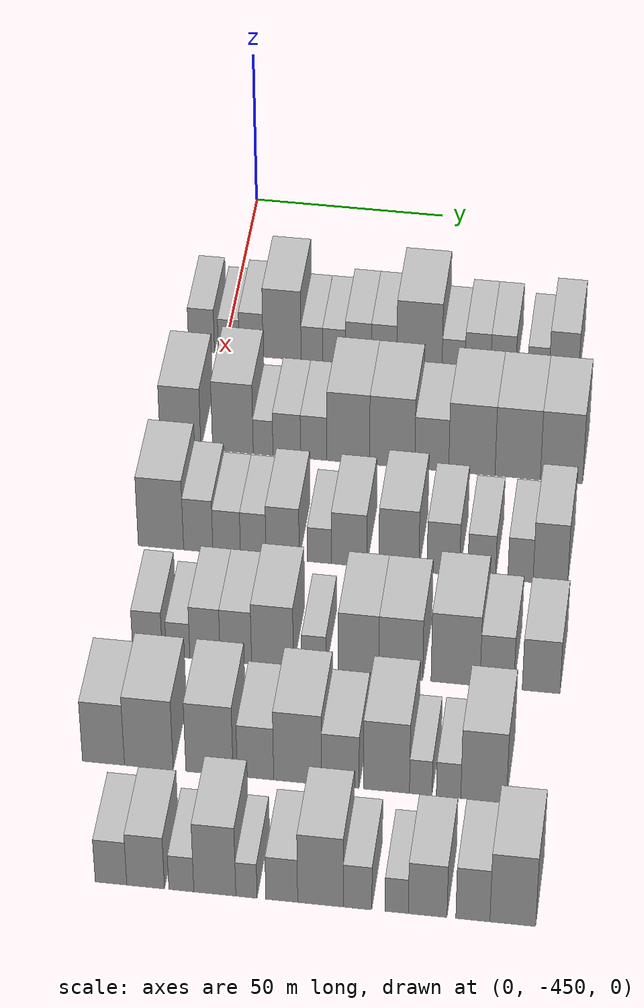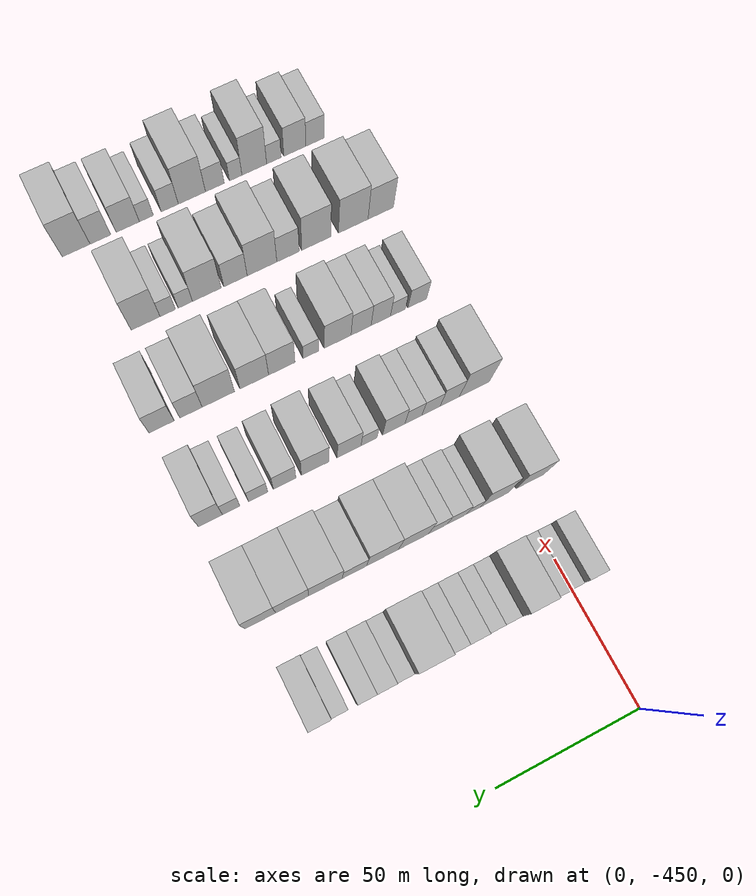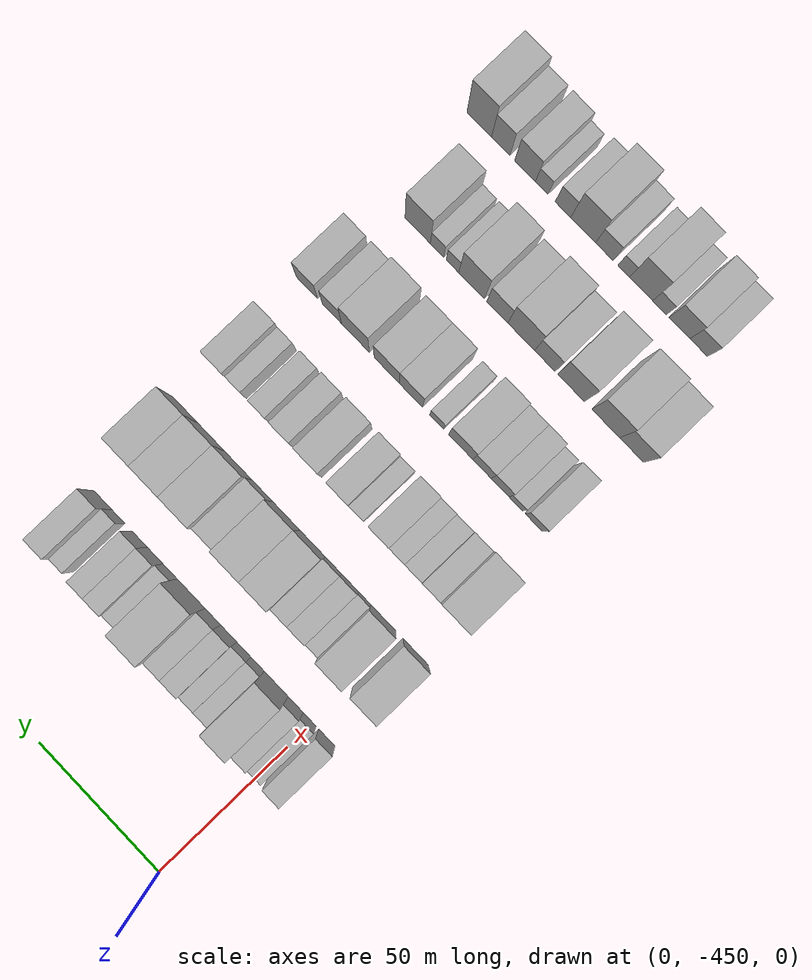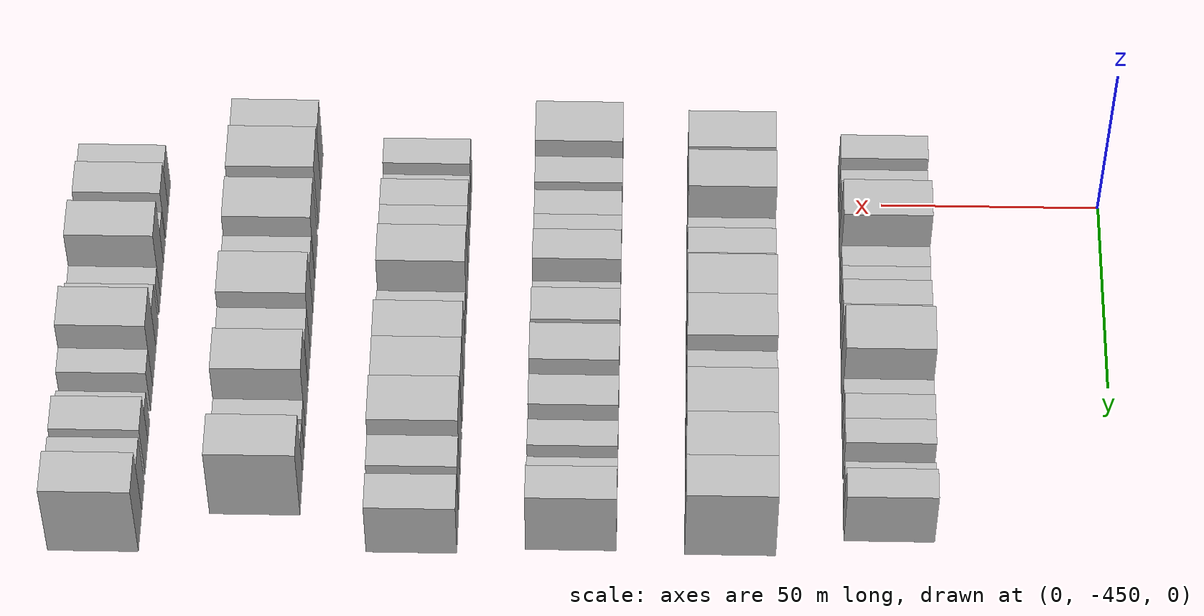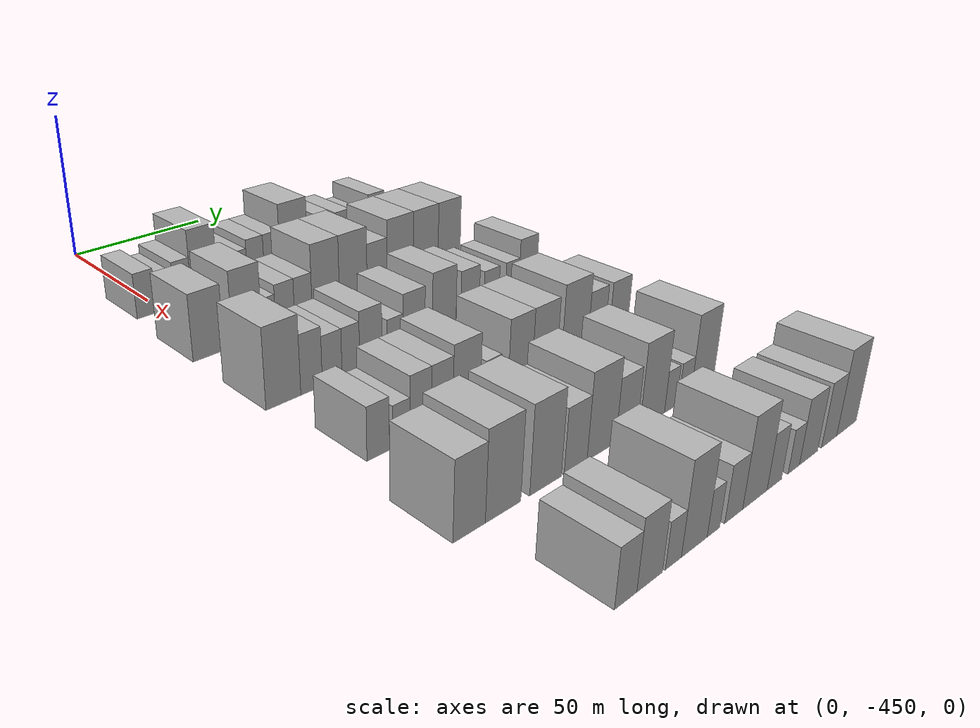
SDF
<sdf version="1.6">
 <world name="default">
  <model name="building_9">
   <static>1</static>
   <pose>50.0000 -455.7226 0 0.000000 0.000000 0.000000</pose>
   <link name="link">
    <pose>0 0 7.50 0 0 0</pose>
    <collision name="collision"><geometry><box><size>20.0000 6.7065 15.0000</size></box></geometry></collision>
    <visual name="visual">
     <cast_shadows>0</cast_shadows>
     <geometry><box><size>20.0000 6.7065 15.0000</size></box></geometry>
     <material>
      <script>
       <uri>model://HANNAS_wall/materials/scripts</uri>
       <uri>model://HANNAS_wall/materials/textures</uri>
       <name>vrc/HANNAS_wall</name>
      </script>
     </material>
    </visual>
   </link>
  </model>
  <model name="building_10">
   <static>1</static>
   <pose>50.0000 -448.6461 0 0.000000 0.000000 0.000000</pose>
   <link name="link">
    <pose>0 0 6.00 0 0 0</pose>
    <collision name="collision"><geometry><box><size>20.0000 5.4464 12.0000</size></box></geometry></collision>
    <visual name="visual">
     <cast_shadows>0</cast_shadows>
     <geometry><box><size>20.0000 5.4464 12.0000</size></box></geometry>
     <material>
      <script>
       <uri>model://HANNAS_wall/materials/scripts</uri>
       <uri>model://HANNAS_wall/materials/textures</uri>
       <name>vrc/HANNAS_wall</name>
      </script>
     </material>
    </visual>
   </link>
  </model>
  <model name="building_11">
   <static>1</static>
   <pose>50.0000 -442.8181 0 0.000000 0.000000 0.000000</pose>
   <link name="link">
    <pose>0 0 7.50 0 0 0</pose>
    <collision name="collision"><geometry><box><size>20.0000 6.2098 15.0000</size></box></geometry></collision>
    <visual name="visual">
     <cast_shadows>0</cast_shadows>
     <geometry><box><size>20.0000 6.2098 15.0000</size></box></geometry>
     <material>
      <script>
       <uri>model://HANNAS_wall/materials/scripts</uri>
       <uri>model://HANNAS_wall/materials/textures</uri>
       <name>vrc/HANNAS_wall</name>
      </script>
     </material>
    </visual>
   </link>
  </model>
  <model name="building_12">
   <static>1</static>
   <pose>50.0000 -434.7869 0 0.000000 0.000000 0.000000</pose>
   <link name="link">
    <pose>0 0 12.00 0 0 0</pose>
    <collision name="collision"><geometry><box><size>20.0000 9.8526 24.0000</size></box></geometry></collision>
    <visual name="visual">
     <cast_shadows>0</cast_shadows>
     <geometry><box><size>20.0000 9.8526 24.0000</size></box></geometry>
     <material>
      <script>
       <uri>model://HANNAS_wall/materials/scripts</uri>
       <uri>model://HANNAS_wall/materials/textures</uri>
       <name>vrc/HANNAS_wall</name>
      </script>
     </material>
    </visual>
   </link>
  </model>
  <model name="building_13">
   <static>1</static>
   <pose>50.0000 -427.0802 0 0.000000 0.000000 0.000000</pose>
   <link name="link">
    <pose>0 0 6.00 0 0 0</pose>
    <collision name="collision"><geometry><box><size>20.0000 5.5608 12.0000</size></box></geometry></collision>
    <visual name="visual">
     <cast_shadows>0</cast_shadows>
     <geometry><box><size>20.0000 5.5608 12.0000</size></box></geometry>
     <material>
      <script>
       <uri>model://HANNAS_wall/materials/scripts</uri>
       <uri>model://HANNAS_wall/materials/textures</uri>
       <name>vrc/HANNAS_wall</name>
      </script>
     </material>
    </visual>
   </link>
  </model>
  <model name="building_14">
   <static>1</static>
   <pose>50.0000 -421.3700 0 0.000000 0.000000 0.000000</pose>
   <link name="link">
    <pose>0 0 6.00 0 0 0</pose>
    <collision name="collision"><geometry><box><size>20.0000 5.8594 12.0000</size></box></geometry></collision>
    <visual name="visual">
     <cast_shadows>0</cast_shadows>
     <geometry><box><size>20.0000 5.8594 12.0000</size></box></geometry>
     <material>
      <script>
       <uri>model://HANNAS_wall/materials/scripts</uri>
       <uri>model://HANNAS_wall/materials/textures</uri>
       <name>vrc/HANNAS_wall</name>
      </script>
     </material>
    </visual>
   </link>
  </model>
  <model name="building_15">
   <static>1</static>
   <pose>50.0000 -415.0741 0 0.000000 0.000000 0.000000</pose>
   <link name="link">
    <pose>0 0 7.50 0 0 0</pose>
    <collision name="collision"><geometry><box><size>20.0000 6.7324 15.0000</size></box></geometry></collision>
    <visual name="visual">
     <cast_shadows>0</cast_shadows>
     <geometry><box><size>20.0000 6.7324 15.0000</size></box></geometry>
     <material>
      <script>
       <uri>model://HANNAS_wall/materials/scripts</uri>
       <uri>model://HANNAS_wall/materials/textures</uri>
       <name>vrc/HANNAS_wall</name>
      </script>
     </material>
    </visual>
   </link>
  </model>
  <model name="building_16">
   <static>1</static>
   <pose>50.0000 -408.4143 0 0.000000 0.000000 0.000000</pose>
   <link name="link">
    <pose>0 0 7.50 0 0 0</pose>
    <collision name="collision"><geometry><box><size>20.0000 6.5873 15.0000</size></box></geometry></collision>
    <visual name="visual">
     <cast_shadows>0</cast_shadows>
     <geometry><box><size>20.0000 6.5873 15.0000</size></box></geometry>
     <material>
      <script>
       <uri>model://HANNAS_wall/materials/scripts</uri>
       <uri>model://HANNAS_wall/materials/textures</uri>
       <name>vrc/HANNAS_wall</name>
      </script>
     </material>
    </visual>
   </link>
  </model>
  <model name="building_17">
   <static>1</static>
   <pose>50.0000 -399.2987 0 0.000000 0.000000 0.000000</pose>
   <link name="link">
    <pose>0 0 12.00 0 0 0</pose>
    <collision name="collision"><geometry><box><size>20.0000 11.6438 24.0000</size></box></geometry></collision>
    <visual name="visual">
     <cast_shadows>0</cast_shadows>
     <geometry><box><size>20.0000 11.6438 24.0000</size></box></geometry>
     <material>
      <script>
       <uri>model://HANNAS_wall/materials/scripts</uri>
       <uri>model://HANNAS_wall/materials/textures</uri>
       <name>vrc/HANNAS_wall</name>
      </script>
     </material>
    </visual>
   </link>
  </model>
  <model name="building_18">
   <static>1</static>
   <pose>50.0000 -390.5095 0 0.000000 0.000000 0.000000</pose>
   <link name="link">
    <pose>0 0 6.00 0 0 0</pose>
    <collision name="collision"><geometry><box><size>20.0000 5.9346 12.0000</size></box></geometry></collision>
    <visual name="visual">
     <cast_shadows>0</cast_shadows>
     <geometry><box><size>20.0000 5.9346 12.0000</size></box></geometry>
     <material>
      <script>
       <uri>model://HANNAS_wall/materials/scripts</uri>
       <uri>model://HANNAS_wall/materials/textures</uri>
       <name>vrc/HANNAS_wall</name>
      </script>
     </material>
    </visual>
   </link>
  </model>
  <model name="building_19">
   <static>1</static>
   <pose>50.0000 -384.2496 0 0.000000 0.000000 0.000000</pose>
   <link name="link">
    <pose>0 0 7.50 0 0 0</pose>
    <collision name="collision"><geometry><box><size>20.0000 6.5854 15.0000</size></box></geometry></collision>
    <visual name="visual">
     <cast_shadows>0</cast_shadows>
     <geometry><box><size>20.0000 6.5854 15.0000</size></box></geometry>
     <material>
      <script>
       <uri>model://HANNAS_wall/materials/scripts</uri>
       <uri>model://HANNAS_wall/materials/textures</uri>
       <name>vrc/HANNAS_wall</name>
      </script>
     </material>
    </visual>
   </link>
  </model>
  <model name="building_20">
   <static>1</static>
   <pose>50.0000 -377.7349 0 0.000000 0.000000 0.000000</pose>
   <link name="link">
    <pose>0 0 7.50 0 0 0</pose>
    <collision name="collision"><geometry><box><size>20.0000 6.4440 15.0000</size></box></geometry></collision>
    <visual name="visual">
     <cast_shadows>0</cast_shadows>
     <geometry><box><size>20.0000 6.4440 15.0000</size></box></geometry>
     <material>
      <script>
       <uri>model://HANNAS_wall/materials/scripts</uri>
       <uri>model://HANNAS_wall/materials/textures</uri>
       <name>vrc/HANNAS_wall</name>
      </script>
     </material>
    </visual>
   </link>
  </model>
  <model name="building_21">
   <static>1</static>
   <pose>50.0000 -368.7472 0 0.000000 0.000000 0.000000</pose>
   <link name="link">
    <pose>0 0 6.00 0 0 0</pose>
    <collision name="collision"><geometry><box><size>20.0000 5.5313 12.0000</size></box></geometry></collision>
    <visual name="visual">
     <cast_shadows>0</cast_shadows>
     <geometry><box><size>20.0000 5.5313 12.0000</size></box></geometry>
     <material>
      <script>
       <uri>model://HANNAS_wall/materials/scripts</uri>
       <uri>model://HANNAS_wall/materials/textures</uri>
       <name>vrc/HANNAS_wall</name>
      </script>
     </material>
    </visual>
   </link>
  </model>
  <model name="building_22">
   <static>1</static>
   <pose>50.0000 -362.2140 0 0.000000 0.000000 0.000000</pose>
   <link name="link">
    <pose>0 0 9.00 0 0 0</pose>
    <collision name="collision"><geometry><box><size>20.0000 7.5350 18.0000</size></box></geometry></collision>
    <visual name="visual">
     <cast_shadows>0</cast_shadows>
     <geometry><box><size>20.0000 7.5350 18.0000</size></box></geometry>
     <material>
      <script>
       <uri>model://HANNAS_wall/materials/scripts</uri>
       <uri>model://HANNAS_wall/materials/textures</uri>
       <name>vrc/HANNAS_wall</name>
      </script>
     </material>
    </visual>
   </link>
  </model>
  <model name="building_131">
   <static>1</static>
   <pose>85.0000 -455.6836 0 0.000000 0.000000 0.000000</pose>
   <link name="link">
    <pose>0 0 10.50 0 0 0</pose>
    <collision name="collision"><geometry><box><size>20.0000 10.3124 21.0000</size></box></geometry></collision>
    <visual name="visual">
     <cast_shadows>0</cast_shadows>
     <geometry><box><size>20.0000 10.3124 21.0000</size></box></geometry>
     <material>
      <script>
       <uri>model://HANNAS_wall/materials/scripts</uri>
       <uri>model://HANNAS_wall/materials/textures</uri>
       <name>vrc/HANNAS_wall</name>
      </script>
     </material>
    </visual>
   </link>
  </model>
  <model name="building_132">
   <static>1</static>
   <pose>85.0000 -442.3700 0 0.000000 0.000000 0.000000</pose>
   <link name="link">
    <pose>0 0 12.00 0 0 0</pose>
    <collision name="collision"><geometry><box><size>20.0000 10.3149 24.0000</size></box></geometry></collision>
    <visual name="visual">
     <cast_shadows>0</cast_shadows>
     <geometry><box><size>20.0000 10.3149 24.0000</size></box></geometry>
     <material>
      <script>
       <uri>model://HANNAS_wall/materials/scripts</uri>
       <uri>model://HANNAS_wall/materials/textures</uri>
       <name>vrc/HANNAS_wall</name>
      </script>
     </material>
    </visual>
   </link>
  </model>
  <model name="building_133">
   <static>1</static>
   <pose>85.0000 -434.7196 0 0.000000 0.000000 0.000000</pose>
   <link name="link">
    <pose>0 0 6.00 0 0 0</pose>
    <collision name="collision"><geometry><box><size>20.0000 4.9859 12.0000</size></box></geometry></collision>
    <visual name="visual">
     <cast_shadows>0</cast_shadows>
     <geometry><box><size>20.0000 4.9859 12.0000</size></box></geometry>
     <material>
      <script>
       <uri>model://HANNAS_wall/materials/scripts</uri>
       <uri>model://HANNAS_wall/materials/textures</uri>
       <name>vrc/HANNAS_wall</name>
      </script>
     </material>
    </visual>
   </link>
  </model>
  <model name="building_134">
   <static>1</static>
   <pose>85.0000 -428.7311 0 0.000000 0.000000 0.000000</pose>
   <link name="link">
    <pose>0 0 7.50 0 0 0</pose>
    <collision name="collision"><geometry><box><size>20.0000 6.9911 15.0000</size></box></geometry></collision>
    <visual name="visual">
     <cast_shadows>0</cast_shadows>
     <geometry><box><size>20.0000 6.9911 15.0000</size></box></geometry>
     <material>
      <script>
       <uri>model://HANNAS_wall/materials/scripts</uri>
       <uri>model://HANNAS_wall/materials/textures</uri>
       <name>vrc/HANNAS_wall</name>
      </script>
     </material>
    </visual>
   </link>
  </model>
  <model name="building_135">
   <static>1</static>
   <pose>85.0000 -421.8985 0 0.000000 0.000000 0.000000</pose>
   <link name="link">
    <pose>0 0 7.50 0 0 0</pose>
    <collision name="collision"><geometry><box><size>20.0000 6.6741 15.0000</size></box></geometry></collision>
    <visual name="visual">
     <cast_shadows>0</cast_shadows>
     <geometry><box><size>20.0000 6.6741 15.0000</size></box></geometry>
     <material>
      <script>
       <uri>model://HANNAS_wall/materials/scripts</uri>
       <uri>model://HANNAS_wall/materials/textures</uri>
       <name>vrc/HANNAS_wall</name>
      </script>
     </material>
    </visual>
   </link>
  </model>
  <model name="building_136">
   <static>1</static>
   <pose>85.0000 -413.1720 0 0.000000 0.000000 0.000000</pose>
   <link name="link">
    <pose>0 0 12.00 0 0 0</pose>
    <collision name="collision"><geometry><box><size>20.0000 10.7788 24.0000</size></box></geometry></collision>
    <visual name="visual">
     <cast_shadows>0</cast_shadows>
     <geometry><box><size>20.0000 10.7788 24.0000</size></box></geometry>
     <material>
      <script>
       <uri>model://HANNAS_wall/materials/scripts</uri>
       <uri>model://HANNAS_wall/materials/textures</uri>
       <name>vrc/HANNAS_wall</name>
      </script>
     </material>
    </visual>
   </link>
  </model>
  <model name="building_137">
   <static>1</static>
   <pose>85.0000 -402.1040 0 0.000000 0.000000 0.000000</pose>
   <link name="link">
    <pose>0 0 12.00 0 0 0</pose>
    <collision name="collision"><geometry><box><size>20.0000 11.3573 24.0000</size></box></geometry></collision>
    <visual name="visual">
     <cast_shadows>0</cast_shadows>
     <geometry><box><size>20.0000 11.3573 24.0000</size></box></geometry>
     <material>
      <script>
       <uri>model://HANNAS_wall/materials/scripts</uri>
       <uri>model://HANNAS_wall/materials/textures</uri>
       <name>vrc/HANNAS_wall</name>
      </script>
     </material>
    </visual>
   </link>
  </model>
  <model name="building_138">
   <static>1</static>
   <pose>85.0000 -392.1561 0 0.000000 0.000000 0.000000</pose>
   <link name="link">
    <pose>0 0 9.00 0 0 0</pose>
    <collision name="collision"><geometry><box><size>20.0000 8.5384 18.0000</size></box></geometry></collision>
    <visual name="visual">
     <cast_shadows>0</cast_shadows>
     <geometry><box><size>20.0000 8.5384 18.0000</size></box></geometry>
     <material>
      <script>
       <uri>model://HANNAS_wall/materials/scripts</uri>
       <uri>model://HANNAS_wall/materials/textures</uri>
       <name>vrc/HANNAS_wall</name>
      </script>
     </material>
    </visual>
   </link>
  </model>
  <model name="building_139">
   <static>1</static>
   <pose>85.0000 -382.0667 0 0.000000 0.000000 0.000000</pose>
   <link name="link">
    <pose>0 0 12.00 0 0 0</pose>
    <collision name="collision"><geometry><box><size>20.0000 11.6404 24.0000</size></box></geometry></collision>
    <visual name="visual">
     <cast_shadows>0</cast_shadows>
     <geometry><box><size>20.0000 11.6404 24.0000</size></box></geometry>
     <material>
      <script>
       <uri>model://HANNAS_wall/materials/scripts</uri>
       <uri>model://HANNAS_wall/materials/textures</uri>
       <name>vrc/HANNAS_wall</name>
      </script>
     </material>
    </visual>
   </link>
  </model>
  <model name="building_140">
   <static>1</static>
   <pose>85.0000 -370.5657 0 0.000000 0.000000 0.000000</pose>
   <link name="link">
    <pose>0 0 12.00 0 0 0</pose>
    <collision name="collision"><geometry><box><size>20.0000 11.3616 24.0000</size></box></geometry></collision>
    <visual name="visual">
     <cast_shadows>0</cast_shadows>
     <geometry><box><size>20.0000 11.3616 24.0000</size></box></geometry>
     <material>
      <script>
       <uri>model://HANNAS_wall/materials/scripts</uri>
       <uri>model://HANNAS_wall/materials/textures</uri>
       <name>vrc/HANNAS_wall</name>
      </script>
     </material>
    </visual>
   </link>
  </model>
  <model name="building_141">
   <static>1</static>
   <pose>85.0000 -359.6008 0 0.000000 0.000000 0.000000</pose>
   <link name="link">
    <pose>0 0 12.00 0 0 0</pose>
    <collision name="collision"><geometry><box><size>20.0000 10.5682 24.0000</size></box></geometry></collision>
    <visual name="visual">
     <cast_shadows>0</cast_shadows>
     <geometry><box><size>20.0000 10.5682 24.0000</size></box></geometry>
     <material>
      <script>
       <uri>model://HANNAS_wall/materials/scripts</uri>
       <uri>model://HANNAS_wall/materials/textures</uri>
       <name>vrc/HANNAS_wall</name>
      </script>
     </material>
    </visual>
   </link>
  </model>
  <model name="building_262">
   <static>1</static>
   <pose>120.0000 -455.0277 0 0.000000 0.000000 0.000000</pose>
   <link name="link">
    <pose>0 0 12.00 0 0 0</pose>
    <collision name="collision"><geometry><box><size>20.0000 11.2514 24.0000</size></box></geometry></collision>
    <visual name="visual">
     <cast_shadows>0</cast_shadows>
     <geometry><box><size>20.0000 11.2514 24.0000</size></box></geometry>
     <material>
      <script>
       <uri>model://HANNAS_wall/materials/scripts</uri>
       <uri>model://HANNAS_wall/materials/textures</uri>
       <name>vrc/HANNAS_wall</name>
      </script>
     </material>
    </visual>
   </link>
  </model>
  <model name="building_263">
   <static>1</static>
   <pose>120.0000 -445.7705 0 0.000000 0.000000 0.000000</pose>
   <link name="link">
    <pose>0 0 9.00 0 0 0</pose>
    <collision name="collision"><geometry><box><size>20.0000 7.2629 18.0000</size></box></geometry></collision>
    <visual name="visual">
     <cast_shadows>0</cast_shadows>
     <geometry><box><size>20.0000 7.2629 18.0000</size></box></geometry>
     <material>
      <script>
       <uri>model://HANNAS_wall/materials/scripts</uri>
       <uri>model://HANNAS_wall/materials/textures</uri>
       <name>vrc/HANNAS_wall</name>
      </script>
     </material>
    </visual>
   </link>
  </model>
  <model name="building_264">
   <static>1</static>
   <pose>120.0000 -438.7260 0 0.000000 0.000000 0.000000</pose>
   <link name="link">
    <pose>0 0 7.50 0 0 0</pose>
    <collision name="collision"><geometry><box><size>20.0000 6.8261 15.0000</size></box></geometry></collision>
    <visual name="visual">
     <cast_shadows>0</cast_shadows>
     <geometry><box><size>20.0000 6.8261 15.0000</size></box></geometry>
     <material>
      <script>
       <uri>model://HANNAS_wall/materials/scripts</uri>
       <uri>model://HANNAS_wall/materials/textures</uri>
       <name>vrc/HANNAS_wall</name>
      </script>
     </material>
    </visual>
   </link>
  </model>
  <model name="building_265">
   <static>1</static>
   <pose>120.0000 -432.1539 0 0.000000 0.000000 0.000000</pose>
   <link name="link">
    <pose>0 0 7.50 0 0 0</pose>
    <collision name="collision"><geometry><box><size>20.0000 6.3182 15.0000</size></box></geometry></collision>
    <visual name="visual">
     <cast_shadows>0</cast_shadows>
     <geometry><box><size>20.0000 6.3182 15.0000</size></box></geometry>
     <material>
      <script>
       <uri>model://HANNAS_wall/materials/scripts</uri>
       <uri>model://HANNAS_wall/materials/textures</uri>
       <name>vrc/HANNAS_wall</name>
      </script>
     </material>
    </visual>
   </link>
  </model>
  <model name="building_266">
   <static>1</static>
   <pose>120.0000 -424.8965 0 0.000000 0.000000 0.000000</pose>
   <link name="link">
    <pose>0 0 9.00 0 0 0</pose>
    <collision name="collision"><geometry><box><size>20.0000 8.1965 18.0000</size></box></geometry></collision>
    <visual name="visual">
     <cast_shadows>0</cast_shadows>
     <geometry><box><size>20.0000 8.1965 18.0000</size></box></geometry>
     <material>
      <script>
       <uri>model://HANNAS_wall/materials/scripts</uri>
       <uri>model://HANNAS_wall/materials/textures</uri>
       <name>vrc/HANNAS_wall</name>
      </script>
     </material>
    </visual>
   </link>
  </model>
  <model name="building_267">
   <static>1</static>
   <pose>120.0000 -415.8363 0 0.000000 0.000000 0.000000</pose>
   <link name="link">
    <pose>0 0 6.00 0 0 0</pose>
    <collision name="collision"><geometry><box><size>20.0000 5.9240 12.0000</size></box></geometry></collision>
    <visual name="visual">
     <cast_shadows>0</cast_shadows>
     <geometry><box><size>20.0000 5.9240 12.0000</size></box></geometry>
     <material>
      <script>
       <uri>model://HANNAS_wall/materials/scripts</uri>
       <uri>model://HANNAS_wall/materials/textures</uri>
       <name>vrc/HANNAS_wall</name>
      </script>
     </material>
    </visual>
   </link>
  </model>
  <model name="building_268">
   <static>1</static>
   <pose>120.0000 -408.5148 0 0.000000 0.000000 0.000000</pose>
   <link name="link">
    <pose>0 0 9.00 0 0 0</pose>
    <collision name="collision"><geometry><box><size>20.0000 8.7190 18.0000</size></box></geometry></collision>
    <visual name="visual">
     <cast_shadows>0</cast_shadows>
     <geometry><box><size>20.0000 8.7190 18.0000</size></box></geometry>
     <material>
      <script>
       <uri>model://HANNAS_wall/materials/scripts</uri>
       <uri>model://HANNAS_wall/materials/textures</uri>
       <name>vrc/HANNAS_wall</name>
      </script>
     </material>
    </visual>
   </link>
  </model>
  <model name="building_269">
   <static>1</static>
   <pose>120.0000 -396.2570 0 0.000000 0.000000 0.000000</pose>
   <link name="link">
    <pose>0 0 10.50 0 0 0</pose>
    <collision name="collision"><geometry><box><size>20.0000 9.7964 21.0000</size></box></geometry></collision>
    <visual name="visual">
     <cast_shadows>0</cast_shadows>
     <geometry><box><size>20.0000 9.7964 21.0000</size></box></geometry>
     <material>
      <script>
       <uri>model://HANNAS_wall/materials/scripts</uri>
       <uri>model://HANNAS_wall/materials/textures</uri>
       <name>vrc/HANNAS_wall</name>
      </script>
     </material>
    </visual>
   </link>
  </model>
  <model name="building_270">
   <static>1</static>
   <pose>120.0000 -385.3605 0 0.000000 0.000000 0.000000</pose>
   <link name="link">
    <pose>0 0 9.00 0 0 0</pose>
    <collision name="collision"><geometry><box><size>20.0000 7.9966 18.0000</size></box></geometry></collision>
    <visual name="visual">
     <cast_shadows>0</cast_shadows>
     <geometry><box><size>20.0000 7.9966 18.0000</size></box></geometry>
     <material>
      <script>
       <uri>model://HANNAS_wall/materials/scripts</uri>
       <uri>model://HANNAS_wall/materials/textures</uri>
       <name>vrc/HANNAS_wall</name>
      </script>
     </material>
    </visual>
   </link>
  </model>
  <model name="building_271">
   <static>1</static>
   <pose>120.0000 -375.9566 0 0.000000 0.000000 0.000000</pose>
   <link name="link">
    <pose>0 0 7.50 0 0 0</pose>
    <collision name="collision"><geometry><box><size>20.0000 6.8113 15.0000</size></box></geometry></collision>
    <visual name="visual">
     <cast_shadows>0</cast_shadows>
     <geometry><box><size>20.0000 6.8113 15.0000</size></box></geometry>
     <material>
      <script>
       <uri>model://HANNAS_wall/materials/scripts</uri>
       <uri>model://HANNAS_wall/materials/textures</uri>
       <name>vrc/HANNAS_wall</name>
      </script>
     </material>
    </visual>
   </link>
  </model>
  <model name="building_272">
   <static>1</static>
   <pose>120.0000 -366.4709 0 0.000000 0.000000 0.000000</pose>
   <link name="link">
    <pose>0 0 7.50 0 0 0</pose>
    <collision name="collision"><geometry><box><size>20.0000 6.1601 15.0000</size></box></geometry></collision>
    <visual name="visual">
     <cast_shadows>0</cast_shadows>
     <geometry><box><size>20.0000 6.1601 15.0000</size></box></geometry>
     <material>
      <script>
       <uri>model://HANNAS_wall/materials/scripts</uri>
       <uri>model://HANNAS_wall/materials/textures</uri>
       <name>vrc/HANNAS_wall</name>
      </script>
     </material>
    </visual>
   </link>
  </model>
  <model name="building_273">
   <static>1</static>
   <pose>120.0000 -359.1702 0 0.000000 0.000000 0.000000</pose>
   <link name="link">
    <pose>0 0 10.50 0 0 0</pose>
    <collision name="collision"><geometry><box><size>20.0000 8.4412 21.0000</size></box></geometry></collision>
    <visual name="visual">
     <cast_shadows>0</cast_shadows>
     <geometry><box><size>20.0000 8.4412 21.0000</size></box></geometry>
     <material>
      <script>
       <uri>model://HANNAS_wall/materials/scripts</uri>
       <uri>model://HANNAS_wall/materials/textures</uri>
       <name>vrc/HANNAS_wall</name>
      </script>
     </material>
    </visual>
   </link>
  </model>
  <model name="building_392">
   <static>1</static>
   <pose>155.0000 -452.6387 0 0.000000 0.000000 0.000000</pose>
   <link name="link">
    <pose>0 0 7.50 0 0 0</pose>
    <collision name="collision"><geometry><box><size>20.0000 7.1293 15.0000</size></box></geometry></collision>
    <visual name="visual">
     <cast_shadows>0</cast_shadows>
     <geometry><box><size>20.0000 7.1293 15.0000</size></box></geometry>
     <material>
      <script>
       <uri>model://HANNAS_wall/materials/scripts</uri>
       <uri>model://HANNAS_wall/materials/textures</uri>
       <name>vrc/HANNAS_wall</name>
      </script>
     </material>
    </visual>
   </link>
  </model>
  <model name="building_393">
   <static>1</static>
   <pose>155.0000 -445.2273 0 0.000000 0.000000 0.000000</pose>
   <link name="link">
    <pose>0 0 6.00 0 0 0</pose>
    <collision name="collision"><geometry><box><size>20.0000 5.6935 12.0000</size></box></geometry></collision>
    <visual name="visual">
     <cast_shadows>0</cast_shadows>
     <geometry><box><size>20.0000 5.6935 12.0000</size></box></geometry>
     <material>
      <script>
       <uri>model://HANNAS_wall/materials/scripts</uri>
       <uri>model://HANNAS_wall/materials/textures</uri>
       <name>vrc/HANNAS_wall</name>
      </script>
     </material>
    </visual>
   </link>
  </model>
  <model name="building_394">
   <static>1</static>
   <pose>155.0000 -438.7198 0 0.000000 0.000000 0.000000</pose>
   <link name="link">
    <pose>0 0 9.00 0 0 0</pose>
    <collision name="collision"><geometry><box><size>20.0000 7.3215 18.0000</size></box></geometry></collision>
    <visual name="visual">
     <cast_shadows>0</cast_shadows>
     <geometry><box><size>20.0000 7.3215 18.0000</size></box></geometry>
     <material>
      <script>
       <uri>model://HANNAS_wall/materials/scripts</uri>
       <uri>model://HANNAS_wall/materials/textures</uri>
       <name>vrc/HANNAS_wall</name>
      </script>
     </material>
    </visual>
   </link>
  </model>
  <model name="building_395">
   <static>1</static>
   <pose>155.0000 -431.2725 0 0.000000 0.000000 0.000000</pose>
   <link name="link">
    <pose>0 0 9.00 0 0 0</pose>
    <collision name="collision"><geometry><box><size>20.0000 7.5731 18.0000</size></box></geometry></collision>
    <visual name="visual">
     <cast_shadows>0</cast_shadows>
     <geometry><box><size>20.0000 7.5731 18.0000</size></box></geometry>
     <material>
      <script>
       <uri>model://HANNAS_wall/materials/scripts</uri>
       <uri>model://HANNAS_wall/materials/textures</uri>
       <name>vrc/HANNAS_wall</name>
      </script>
     </material>
    </visual>
   </link>
  </model>
  <model name="building_396">
   <static>1</static>
   <pose>155.0000 -422.4555 0 0.000000 0.000000 0.000000</pose>
   <link name="link">
    <pose>0 0 10.50 0 0 0</pose>
    <collision name="collision"><geometry><box><size>20.0000 10.0608 21.0000</size></box></geometry></collision>
    <visual name="visual">
     <cast_shadows>0</cast_shadows>
     <geometry><box><size>20.0000 10.0608 21.0000</size></box></geometry>
     <material>
      <script>
       <uri>model://HANNAS_wall/materials/scripts</uri>
       <uri>model://HANNAS_wall/materials/textures</uri>
       <name>vrc/HANNAS_wall</name>
      </script>
     </material>
    </visual>
   </link>
  </model>
  <model name="building_397">
   <static>1</static>
   <pose>155.0000 -412.5125 0 0.000000 0.000000 0.000000</pose>
   <link name="link">
    <pose>0 0 6.00 0 0 0</pose>
    <collision name="collision"><geometry><box><size>20.0000 5.8252 12.0000</size></box></geometry></collision>
    <visual name="visual">
     <cast_shadows>0</cast_shadows>
     <geometry><box><size>20.0000 5.8252 12.0000</size></box></geometry>
     <material>
      <script>
       <uri>model://HANNAS_wall/materials/scripts</uri>
       <uri>model://HANNAS_wall/materials/textures</uri>
       <name>vrc/HANNAS_wall</name>
      </script>
     </material>
    </visual>
   </link>
  </model>
  <model name="building_398">
   <static>1</static>
   <pose>155.0000 -401.7477 0 0.000000 0.000000 0.000000</pose>
   <link name="link">
    <pose>0 0 10.50 0 0 0</pose>
    <collision name="collision"><geometry><box><size>20.0000 9.7044 21.0000</size></box></geometry></collision>
    <visual name="visual">
     <cast_shadows>0</cast_shadows>
     <geometry><box><size>20.0000 9.7044 21.0000</size></box></geometry>
     <material>
      <script>
       <uri>model://HANNAS_wall/materials/scripts</uri>
       <uri>model://HANNAS_wall/materials/textures</uri>
       <name>vrc/HANNAS_wall</name>
      </script>
     </material>
    </visual>
   </link>
  </model>
  <model name="building_399">
   <static>1</static>
   <pose>155.0000 -391.6500 0 0.000000 0.000000 0.000000</pose>
   <link name="link">
    <pose>0 0 10.50 0 0 0</pose>
    <collision name="collision"><geometry><box><size>20.0000 10.4910 21.0000</size></box></geometry></collision>
    <visual name="visual">
     <cast_shadows>0</cast_shadows>
     <geometry><box><size>20.0000 10.4910 21.0000</size></box></geometry>
     <material>
      <script>
       <uri>model://HANNAS_wall/materials/scripts</uri>
       <uri>model://HANNAS_wall/materials/textures</uri>
       <name>vrc/HANNAS_wall</name>
      </script>
     </material>
    </visual>
   </link>
  </model>
  <model name="building_400">
   <static>1</static>
   <pose>155.0000 -378.5524 0 0.000000 0.000000 0.000000</pose>
   <link name="link">
    <pose>0 0 12.00 0 0 0</pose>
    <collision name="collision"><geometry><box><size>20.0000 11.7043 24.0000</size></box></geometry></collision>
    <visual name="visual">
     <cast_shadows>0</cast_shadows>
     <geometry><box><size>20.0000 11.7043 24.0000</size></box></geometry>
     <material>
      <script>
       <uri>model://HANNAS_wall/materials/scripts</uri>
       <uri>model://HANNAS_wall/materials/textures</uri>
       <name>vrc/HANNAS_wall</name>
      </script>
     </material>
    </visual>
   </link>
  </model>
  <model name="building_401">
   <static>1</static>
   <pose>155.0000 -368.6654 0 0.000000 0.000000 0.000000</pose>
   <link name="link">
    <pose>0 0 9.00 0 0 0</pose>
    <collision name="collision"><geometry><box><size>20.0000 8.0696 18.0000</size></box></geometry></collision>
    <visual name="visual">
     <cast_shadows>0</cast_shadows>
     <geometry><box><size>20.0000 8.0696 18.0000</size></box></geometry>
     <material>
      <script>
       <uri>model://HANNAS_wall/materials/scripts</uri>
       <uri>model://HANNAS_wall/materials/textures</uri>
       <name>vrc/HANNAS_wall</name>
      </script>
     </material>
    </visual>
   </link>
  </model>
  <model name="building_402">
   <static>1</static>
   <pose>155.0000 -358.1325 0 0.000000 0.000000 0.000000</pose>
   <link name="link">
    <pose>0 0 9.00 0 0 0</pose>
    <collision name="collision"><geometry><box><size>20.0000 8.9963 18.0000</size></box></geometry></collision>
    <visual name="visual">
     <cast_shadows>0</cast_shadows>
     <geometry><box><size>20.0000 8.9963 18.0000</size></box></geometry>
     <material>
      <script>
       <uri>model://HANNAS_wall/materials/scripts</uri>
       <uri>model://HANNAS_wall/materials/textures</uri>
       <name>vrc/HANNAS_wall</name>
      </script>
     </material>
    </visual>
   </link>
  </model>
  <model name="building_522">
   <static>1</static>
   <pose>190.0000 -457.3083 0 0.000000 0.000000 0.000000</pose>
   <link name="link">
    <pose>0 0 10.50 0 0 0</pose>
    <collision name="collision"><geometry><box><size>20.0000 9.9237 21.0000</size></box></geometry></collision>
    <visual name="visual">
     <cast_shadows>0</cast_shadows>
     <geometry><box><size>20.0000 9.9237 21.0000</size></box></geometry>
     <material>
      <script>
       <uri>model://HANNAS_wall/materials/scripts</uri>
       <uri>model://HANNAS_wall/materials/textures</uri>
       <name>vrc/HANNAS_wall</name>
      </script>
     </material>
    </visual>
   </link>
  </model>
  <model name="building_523">
   <static>1</static>
   <pose>190.0000 -446.5986 0 0.000000 0.000000 0.000000</pose>
   <link name="link">
    <pose>0 0 12.00 0 0 0</pose>
    <collision name="collision"><geometry><box><size>20.0000 11.4958 24.0000</size></box></geometry></collision>
    <visual name="visual">
     <cast_shadows>0</cast_shadows>
     <geometry><box><size>20.0000 11.4958 24.0000</size></box></geometry>
     <material>
      <script>
       <uri>model://HANNAS_wall/materials/scripts</uri>
       <uri>model://HANNAS_wall/materials/textures</uri>
       <name>vrc/HANNAS_wall</name>
      </script>
     </material>
    </visual>
   </link>
  </model>
  <model name="building_524">
   <static>1</static>
   <pose>190.0000 -432.3000 0 0.000000 0.000000 0.000000</pose>
   <link name="link">
    <pose>0 0 12.00 0 0 0</pose>
    <collision name="collision"><geometry><box><size>20.0000 11.1013 24.0000</size></box></geometry></collision>
    <visual name="visual">
     <cast_shadows>0</cast_shadows>
     <geometry><box><size>20.0000 11.1013 24.0000</size></box></geometry>
     <material>
      <script>
       <uri>model://HANNAS_wall/materials/scripts</uri>
       <uri>model://HANNAS_wall/materials/textures</uri>
       <name>vrc/HANNAS_wall</name>
      </script>
     </material>
    </visual>
   </link>
  </model>
  <model name="building_525">
   <static>1</static>
   <pose>190.0000 -421.4851 0 0.000000 0.000000 0.000000</pose>
   <link name="link">
    <pose>0 0 9.00 0 0 0</pose>
    <collision name="collision"><geometry><box><size>20.0000 8.5285 18.0000</size></box></geometry></collision>
    <visual name="visual">
     <cast_shadows>0</cast_shadows>
     <geometry><box><size>20.0000 8.5285 18.0000</size></box></geometry>
     <material>
      <script>
       <uri>model://HANNAS_wall/materials/scripts</uri>
       <uri>model://HANNAS_wall/materials/textures</uri>
       <name>vrc/HANNAS_wall</name>
      </script>
     </material>
    </visual>
   </link>
  </model>
  <model name="building_526">
   <static>1</static>
   <pose>190.0000 -411.6159 0 0.000000 0.000000 0.000000</pose>
   <link name="link">
    <pose>0 0 12.00 0 0 0</pose>
    <collision name="collision"><geometry><box><size>20.0000 11.2100 24.0000</size></box></geometry></collision>
    <visual name="visual">
     <cast_shadows>0</cast_shadows>
     <geometry><box><size>20.0000 11.2100 24.0000</size></box></geometry>
     <material>
      <script>
       <uri>model://HANNAS_wall/materials/scripts</uri>
       <uri>model://HANNAS_wall/materials/textures</uri>
       <name>vrc/HANNAS_wall</name>
      </script>
     </material>
    </visual>
   </link>
  </model>
  <model name="building_527">
   <static>1</static>
   <pose>190.0000 -401.6177 0 0.000000 0.000000 0.000000</pose>
   <link name="link">
    <pose>0 0 9.00 0 0 0</pose>
    <collision name="collision"><geometry><box><size>20.0000 8.7864 18.0000</size></box></geometry></collision>
    <visual name="visual">
     <cast_shadows>0</cast_shadows>
     <geometry><box><size>20.0000 8.7864 18.0000</size></box></geometry>
     <material>
      <script>
       <uri>model://HANNAS_wall/materials/scripts</uri>
       <uri>model://HANNAS_wall/materials/textures</uri>
       <name>vrc/HANNAS_wall</name>
      </script>
     </material>
    </visual>
   </link>
  </model>
  <model name="building_528">
   <static>1</static>
   <pose>190.0000 -390.8494 0 0.000000 0.000000 0.000000</pose>
   <link name="link">
    <pose>0 0 12.00 0 0 0</pose>
    <collision name="collision"><geometry><box><size>20.0000 10.7501 24.0000</size></box></geometry></collision>
    <visual name="visual">
     <cast_shadows>0</cast_shadows>
     <geometry><box><size>20.0000 10.7501 24.0000</size></box></geometry>
     <material>
      <script>
       <uri>model://HANNAS_wall/materials/scripts</uri>
       <uri>model://HANNAS_wall/materials/textures</uri>
       <name>vrc/HANNAS_wall</name>
      </script>
     </material>
    </visual>
   </link>
  </model>
  <model name="building_529">
   <static>1</static>
   <pose>190.0000 -382.8401 0 0.000000 0.000000 0.000000</pose>
   <link name="link">
    <pose>0 0 6.00 0 0 0</pose>
    <collision name="collision"><geometry><box><size>20.0000 5.2685 12.0000</size></box></geometry></collision>
    <visual name="visual">
     <cast_shadows>0</cast_shadows>
     <geometry><box><size>20.0000 5.2685 12.0000</size></box></geometry>
     <material>
      <script>
       <uri>model://HANNAS_wall/materials/scripts</uri>
       <uri>model://HANNAS_wall/materials/textures</uri>
       <name>vrc/HANNAS_wall</name>
      </script>
     </material>
    </visual>
   </link>
  </model>
  <model name="building_530">
   <static>1</static>
   <pose>190.0000 -376.3616 0 0.000000 0.000000 0.000000</pose>
   <link name="link">
    <pose>0 0 6.00 0 0 0</pose>
    <collision name="collision"><geometry><box><size>20.0000 5.6887 12.0000</size></box></geometry></collision>
    <visual name="visual">
     <cast_shadows>0</cast_shadows>
     <geometry><box><size>20.0000 5.6887 12.0000</size></box></geometry>
     <material>
      <script>
       <uri>model://HANNAS_wall/materials/scripts</uri>
       <uri>model://HANNAS_wall/materials/textures</uri>
       <name>vrc/HANNAS_wall</name>
      </script>
     </material>
    </visual>
   </link>
  </model>
  <model name="building_531">
   <static>1</static>
   <pose>190.0000 -368.2090 0 0.000000 0.000000 0.000000</pose>
   <link name="link">
    <pose>0 0 12.00 0 0 0</pose>
    <collision name="collision"><geometry><box><size>20.0000 10.6164 24.0000</size></box></geometry></collision>
    <visual name="visual">
     <cast_shadows>0</cast_shadows>
     <geometry><box><size>20.0000 10.6164 24.0000</size></box></geometry>
     <material>
      <script>
       <uri>model://HANNAS_wall/materials/scripts</uri>
       <uri>model://HANNAS_wall/materials/textures</uri>
       <name>vrc/HANNAS_wall</name>
      </script>
     </material>
    </visual>
   </link>
  </model>
  <model name="building_653">
   <static>1</static>
   <pose>225.0000 -449.5782 0 0.000000 0.000000 0.000000</pose>
   <link name="link">
    <pose>0 0 7.50 0 0 0</pose>
    <collision name="collision"><geometry><box><size>20.0000 7.2479 15.0000</size></box></geometry></collision>
    <visual name="visual">
     <cast_shadows>0</cast_shadows>
     <geometry><box><size>20.0000 7.2479 15.0000</size></box></geometry>
     <material>
      <script>
       <uri>model://HANNAS_wall/materials/scripts</uri>
       <uri>model://HANNAS_wall/materials/textures</uri>
       <name>vrc/HANNAS_wall</name>
      </script>
     </material>
    </visual>
   </link>
  </model>
  <model name="building_654">
   <static>1</static>
   <pose>225.0000 -441.6218 0 0.000000 0.000000 0.000000</pose>
   <link name="link">
    <pose>0 0 9.00 0 0 0</pose>
    <collision name="collision"><geometry><box><size>20.0000 8.6648 18.0000</size></box></geometry></collision>
    <visual name="visual">
     <cast_shadows>0</cast_shadows>
     <geometry><box><size>20.0000 8.6648 18.0000</size></box></geometry>
     <material>
      <script>
       <uri>model://HANNAS_wall/materials/scripts</uri>
       <uri>model://HANNAS_wall/materials/textures</uri>
       <name>vrc/HANNAS_wall</name>
      </script>
     </material>
    </visual>
   </link>
  </model>
  <model name="building_655">
   <static>1</static>
   <pose>225.0000 -433.4255 0 0.000000 0.000000 0.000000</pose>
   <link name="link">
    <pose>0 0 6.00 0 0 0</pose>
    <collision name="collision"><geometry><box><size>20.0000 5.7278 12.0000</size></box></geometry></collision>
    <visual name="visual">
     <cast_shadows>0</cast_shadows>
     <geometry><box><size>20.0000 5.7278 12.0000</size></box></geometry>
     <material>
      <script>
       <uri>model://HANNAS_wall/materials/scripts</uri>
       <uri>model://HANNAS_wall/materials/textures</uri>
       <name>vrc/HANNAS_wall</name>
      </script>
     </material>
    </visual>
   </link>
  </model>
  <model name="building_656">
   <static>1</static>
   <pose>225.0000 -425.7496 0 0.000000 0.000000 0.000000</pose>
   <link name="link">
    <pose>0 0 12.00 0 0 0</pose>
    <collision name="collision"><geometry><box><size>20.0000 9.6242 24.0000</size></box></geometry></collision>
    <visual name="visual">
     <cast_shadows>0</cast_shadows>
     <geometry><box><size>20.0000 9.6242 24.0000</size></box></geometry>
     <material>
      <script>
       <uri>model://HANNAS_wall/materials/scripts</uri>
       <uri>model://HANNAS_wall/materials/textures</uri>
       <name>vrc/HANNAS_wall</name>
      </script>
     </material>
    </visual>
   </link>
  </model>
  <model name="building_657">
   <static>1</static>
   <pose>225.0000 -418.5133 0 0.000000 0.000000 0.000000</pose>
   <link name="link">
    <pose>0 0 6.00 0 0 0</pose>
    <collision name="collision"><geometry><box><size>20.0000 4.8484 12.0000</size></box></geometry></collision>
    <visual name="visual">
     <cast_shadows>0</cast_shadows>
     <geometry><box><size>20.0000 4.8484 12.0000</size></box></geometry>
     <material>
      <script>
       <uri>model://HANNAS_wall/materials/scripts</uri>
       <uri>model://HANNAS_wall/materials/textures</uri>
       <name>vrc/HANNAS_wall</name>
      </script>
     </material>
    </visual>
   </link>
  </model>
  <model name="building_658">
   <static>1</static>
   <pose>225.0000 -410.4562 0 0.000000 0.000000 0.000000</pose>
   <link name="link">
    <pose>0 0 7.50 0 0 0</pose>
    <collision name="collision"><geometry><box><size>20.0000 7.2657 15.0000</size></box></geometry></collision>
    <visual name="visual">
     <cast_shadows>0</cast_shadows>
     <geometry><box><size>20.0000 7.2657 15.0000</size></box></geometry>
     <material>
      <script>
       <uri>model://HANNAS_wall/materials/scripts</uri>
       <uri>model://HANNAS_wall/materials/textures</uri>
       <name>vrc/HANNAS_wall</name>
      </script>
     </material>
    </visual>
   </link>
  </model>
  <model name="building_659">
   <static>1</static>
   <pose>225.0000 -401.6202 0 0.000000 0.000000 0.000000</pose>
   <link name="link">
    <pose>0 0 12.00 0 0 0</pose>
    <collision name="collision"><geometry><box><size>20.0000 10.4064 24.0000</size></box></geometry></collision>
    <visual name="visual">
     <cast_shadows>0</cast_shadows>
     <geometry><box><size>20.0000 10.4064 24.0000</size></box></geometry>
     <material>
      <script>
       <uri>model://HANNAS_wall/materials/scripts</uri>
       <uri>model://HANNAS_wall/materials/textures</uri>
       <name>vrc/HANNAS_wall</name>
      </script>
     </material>
    </visual>
   </link>
  </model>
  <model name="building_660">
   <static>1</static>
   <pose>225.0000 -393.1715 0 0.000000 0.000000 0.000000</pose>
   <link name="link">
    <pose>0 0 7.50 0 0 0</pose>
    <collision name="collision"><geometry><box><size>20.0000 6.4909 15.0000</size></box></geometry></collision>
    <visual name="visual">
     <cast_shadows>0</cast_shadows>
     <geometry><box><size>20.0000 6.4909 15.0000</size></box></geometry>
     <material>
      <script>
       <uri>model://HANNAS_wall/materials/scripts</uri>
       <uri>model://HANNAS_wall/materials/textures</uri>
       <name>vrc/HANNAS_wall</name>
      </script>
     </material>
    </visual>
   </link>
  </model>
  <model name="building_661">
   <static>1</static>
   <pose>225.0000 -384.2848 0 0.000000 0.000000 0.000000</pose>
   <link name="link">
    <pose>0 0 6.00 0 0 0</pose>
    <collision name="collision"><geometry><box><size>20.0000 5.2826 12.0000</size></box></geometry></collision>
    <visual name="visual">
     <cast_shadows>0</cast_shadows>
     <geometry><box><size>20.0000 5.2826 12.0000</size></box></geometry>
     <material>
      <script>
       <uri>model://HANNAS_wall/materials/scripts</uri>
       <uri>model://HANNAS_wall/materials/textures</uri>
       <name>vrc/HANNAS_wall</name>
      </script>
     </material>
    </visual>
   </link>
  </model>
  <model name="building_662">
   <static>1</static>
   <pose>225.0000 -377.2518 0 0.000000 0.000000 0.000000</pose>
   <link name="link">
    <pose>0 0 9.00 0 0 0</pose>
    <collision name="collision"><geometry><box><size>20.0000 8.7833 18.0000</size></box></geometry></collision>
    <visual name="visual">
     <cast_shadows>0</cast_shadows>
     <geometry><box><size>20.0000 8.7833 18.0000</size></box></geometry>
     <material>
      <script>
       <uri>model://HANNAS_wall/materials/scripts</uri>
       <uri>model://HANNAS_wall/materials/textures</uri>
       <name>vrc/HANNAS_wall</name>
      </script>
     </material>
    </visual>
   </link>
  </model>
  <model name="building_663">
   <static>1</static>
   <pose>225.0000 -367.0014 0 0.000000 0.000000 0.000000</pose>
   <link name="link">
    <pose>0 0 9.00 0 0 0</pose>
    <collision name="collision"><geometry><box><size>20.0000 7.7176 18.0000</size></box></geometry></collision>
    <visual name="visual">
     <cast_shadows>0</cast_shadows>
     <geometry><box><size>20.0000 7.7176 18.0000</size></box></geometry>
     <material>
      <script>
       <uri>model://HANNAS_wall/materials/scripts</uri>
       <uri>model://HANNAS_wall/materials/textures</uri>
       <name>vrc/HANNAS_wall</name>
      </script>
     </material>
    </visual>
   </link>
  </model>
  <model name="building_664">
   <static>1</static>
   <pose>225.0000 -357.9630 0 0.000000 0.000000 0.000000</pose>
   <link name="link">
    <pose>0 0 12.00 0 0 0</pose>
    <collision name="collision"><geometry><box><size>20.0000 10.3591 24.0000</size></box></geometry></collision>
    <visual name="visual">
     <cast_shadows>0</cast_shadows>
     <geometry><box><size>20.0000 10.3591 24.0000</size></box></geometry>
     <material>
      <script>
       <uri>model://HANNAS_wall/materials/scripts</uri>
       <uri>model://HANNAS_wall/materials/textures</uri>
       <name>vrc/HANNAS_wall</name>
      </script>
     </material>
    </visual>
   </link>
  </model>
 </world>
</sdf>
